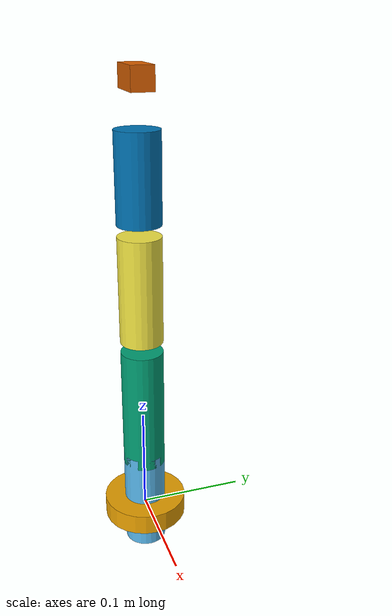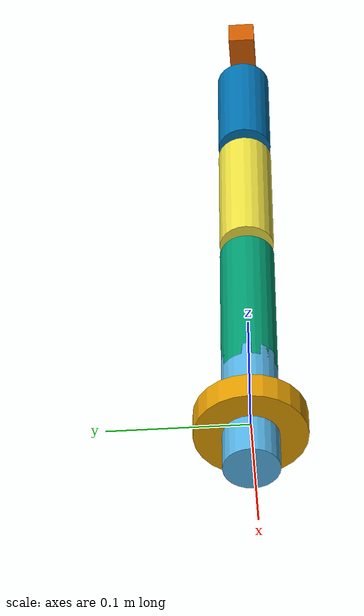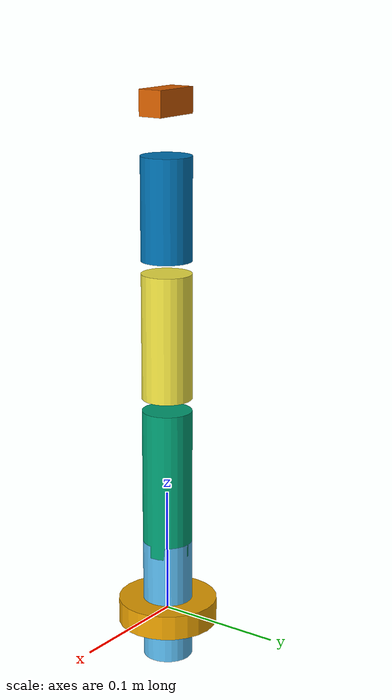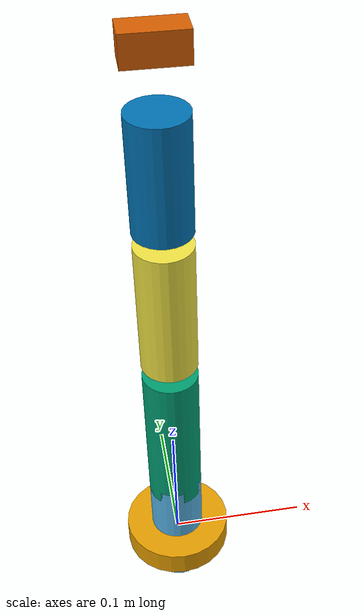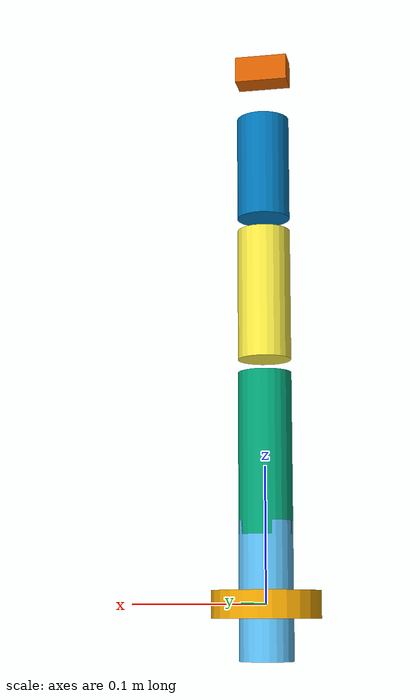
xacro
<?xml version="1.0"?>
<robot xmlns:xacro="http://www.ros.org/wiki/xacro" name="arm_5dof">

  <xacro:property name="link_radius" value="0.02"/>
  <xacro:property name="link1_length" value="0.10"/>
  <xacro:property name="link2_length" value="0.12"/>
  <xacro:property name="link3_length" value="0.10"/>
  <xacro:property name="link4_length" value="0.08"/>

  <link name="base_link">
    <visual>
      <geometry>
        <cylinder length="0.02" radius="0.04"/>
      </geometry>
    </visual>
  </link>

  <link name="link1">
    <visual>
      <geometry>
        <cylinder length="${link1_length}" radius="${link_radius}"/>
      </geometry>
    </visual>
  </link>

  <joint name="joint1" type="revolute">
    <parent link="base_link"/>
    <child link="link1"/>
    <origin xyz="0 0 0.01" rpy="0 0 0"/>
    <axis xyz="0 0 1"/>
    <limit lower="-3.14" upper="3.14" effort="1.0" velocity="1.0"/>
  </joint>

  <link name="link2">
    <visual>
      <geometry>
        <cylinder length="${link2_length}" radius="${link_radius}"/>
      </geometry>
    </visual>
  </link>

  <joint name="joint2" type="revolute">
    <parent link="link1"/>
    <child link="link2"/>
    <origin xyz="0 0 ${link1_length}" rpy="0 0 0"/>
    <axis xyz="0 -1 0"/>
    <limit lower="-1.57" upper="1.57" effort="1.0" velocity="1.0"/>
  </joint>

  <link name="link3">
    <visual>
      <geometry>
        <cylinder length="${link3_length}" radius="${link_radius}"/>
      </geometry>
    </visual>
  </link>

  <joint name="joint3" type="revolute">
    <parent link="link2"/>
    <child link="link3"/>
    <origin xyz="0 0 ${link2_length}" rpy="0 0 0"/>
    <axis xyz="0 1 0"/>
    <limit lower="-1.57" upper="1.57" effort="1.0" velocity="1.0"/>
  </joint>

  <link name="link4">
    <visual>
      <geometry>
        <cylinder length="${link4_length}" radius="${link_radius}"/>
      </geometry>
    </visual>
  </link>

  <joint name="joint4" type="revolute">
    <parent link="link3"/>
    <child link="link4"/>
    <origin xyz="0 0 ${link3_length}" rpy="0 0 0"/>
    <axis xyz="0 -1 0"/>
    <limit lower="-1.57" upper="1.57" effort="1.0" velocity="1.0"/>
  </joint>

  <link name="gripper_link">
    <visual>
      <geometry>
        <box size="0.04 0.02 0.02"/>
      </geometry>
    </visual>
  </link>

  <joint name="joint5" type="revolute">
    <parent link="link4"/>
    <child link="gripper_link"/>
    <origin xyz="0 0 ${link4_length}" rpy="0 0 0"/>
    <axis xyz="0 1 0"/>
    <limit lower="0.0" upper="0.8" effort="0.5" velocity="0.5"/>
  </joint>

</robot>
